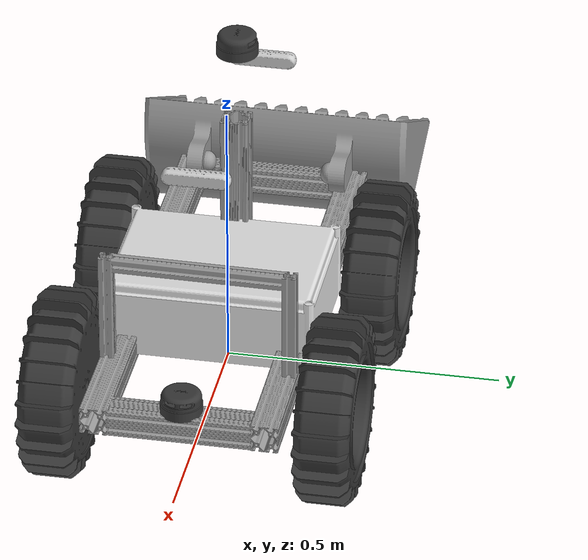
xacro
<?xml version="1.0"?>
<robot name="real_bot"
  xmlns:xacro="http://www.ros.org/wiki/xacro">

  <material name="light_grey">
    <color rgba="0.61 0.61 0.61 1.0" />
  </material>

  <material name="camera_grey">
    <color rgba="0.81 0.81 0.81 1.0" />
  </material>

  <material name="black">
    <color rgba="0.22 0.22 0.22 1.0" />
  </material>

  <material name="white">
    <color rgba="0.89 0.89 0.89 1.0" />
  </material>

  <link name="base_link">
    <visual>
      <geometry>
        <mesh filename="file:///$(find lunabot_simulation)/meshes/base_link.stl" />
      </geometry>
      <origin xyz="0 0 0.1625" rpy="0 0 0" />
      <material name="light_grey" />
    </visual>
    <collision>
      <geometry>
        <mesh filename="file:///$(find lunabot_simulation)/meshes/base_link.stl" />
      </geometry>
      <origin xyz="0 0 0.085" rpy="0 0 0" />
    </collision>
    <inertial>
      <mass value="25.0" />
      <origin xyz="0 0 0.085" />
      <inertia ixx="1.3669" ixy="0.0" ixz="0.0" iyy="3.3602" iyz="0.0" izz="4.7271" />
    </inertial>
  </link>

  <link name="ebox_link">
    <visual>
      <geometry>
        <mesh filename="file:///$(find lunabot_simulation)/meshes/ebox_link.stl" />
      </geometry>
      <origin xyz="0 0 0" rpy="0 0 0" />
      <material name="white" />
    </visual>
    <collision>
      <geometry>
        <mesh filename="file:///$(find lunabot_simulation)/meshes/ebox_link.stl" />
      </geometry>
      <origin xyz="0 0 0" rpy="0 0 0" />
    </collision>
  </link>

  <link name="lidar1_link">
    <visual>
      <geometry>
        <mesh filename="file:///$(find lunabot_simulation)/meshes/lidar1_link.stl" />
      </geometry>
      <origin xyz="0 0 0" rpy="0 0 -1.5708" />
      <material name="black" />
    </visual>
    <collision>
      <geometry>
        <mesh filename="file:///$(find lunabot_simulation)/meshes/lidar1_link.stl" />
      </geometry>
      <origin xyz="0 0 0" rpy="0 0 -1.5708" />
    </collision>
  </link>

  <link name="blade_link">
    <visual>
      <geometry>
        <mesh filename="file:///$(find lunabot_simulation)/meshes/blade_link.stl" />
      </geometry>
      <origin xyz="0 0 0" rpy="0 0 0" />
      <material name="light_grey" />
    </visual>
    <collision>
      <geometry>
        <mesh filename="file:///$(find lunabot_simulation)/meshes/blade_link.stl" />
      </geometry>
      <origin xyz="0 0 0" rpy="0 0 0" />
    </collision>
    <inertial>
      <mass value="5.0" />
      <origin xyz="0 0 0" />
      <inertia ixx="0.0833" ixy="0.0" ixz="0.0" iyy="0.1667" iyz="0.0" izz="0.2333" />
    </inertial>
  </link>

  <link name="lidar2_link">
    <visual>
      <geometry>
        <mesh filename="file:///$(find lunabot_simulation)/meshes/lidar2_link.stl" />
      </geometry>
      <origin xyz="0 0 0" rpy="0 0 -3.14" />
      <material name="black" />
    </visual>
    <collision>
      <geometry>
        <mesh filename="file:///$(find lunabot_simulation)/meshes/lidar2_link.stl" />
      </geometry>
      <origin xyz="0 0 0" rpy="0 0 -3.14" />
    </collision>
  </link>

  <link name="d455_link">
    <visual>
      <geometry>
        <mesh filename="file:///$(find lunabot_simulation)/meshes/camera_link.stl" />
      </geometry>
      <origin xyz="0 0 0" rpy="0 0 3.14" />
      <material name="camera_grey" />
    </visual>
    <collision>
      <geometry>
        <mesh filename="file:///$(find lunabot_simulation)/meshes/camera_link.stl" />
      </geometry>
      <origin xyz="0 0 0" rpy="0 0 3.14" />
    </collision>
  </link>

  <link name="d456_link">
    <visual>
      <geometry>
        <mesh filename="file:///$(find lunabot_simulation)/meshes/camera_link.stl" />
      </geometry>
      <origin xyz="0 0 0" rpy="0 0 0" />
      <material name="camera_grey" />
    </visual>
    <collision>
      <geometry>
        <mesh filename="file:///$(find lunabot_simulation)/meshes/camera_link.stl" />
      </geometry>
      <origin xyz="0 0 0" rpy="0 0 0" />
    </collision>
  </link>

  <link name="front_right_wheel_link">
    <visual>
      <geometry>
        <mesh filename="file:///$(find lunabot_simulation)/meshes/wheel_link.stl" />
      </geometry>
      <origin xyz="0 0 0" rpy="1.5708 0 0" />
      <material name="black" />
    </visual>
    <inertial>
      <mass value="2.27" />
      <origin xyz="0 0 0" />
      <inertia ixx="0.0255" ixy="0.0" ixz="0.0" iyy="0.0255" iyz="0.0" izz="0.0510" />
    </inertial>
    <collision>
      <geometry>
        <mesh filename="file:///$(find lunabot_simulation)/meshes/wheel_link.stl" />
      </geometry>
      <origin xyz="0 0 0" rpy="1.5708 0 0" />
    </collision>
  </link>

  <link name="front_left_wheel_link">
    <visual>
      <geometry>
        <mesh filename="file:///$(find lunabot_simulation)/meshes/wheel_link.stl" />
      </geometry>
      <origin xyz="0 0 0" rpy="-1.5708 0 0" />
      <material name="black" />
    </visual>
    <inertial>
      <mass value="2.27" />
      <origin xyz="0 0 0" />
      <inertia ixx="0.0255" ixy="0.0" ixz="0.0" iyy="0.0255" iyz="0.0" izz="0.0510" />
    </inertial>
    <collision>
      <geometry>
        <mesh filename="file:///$(find lunabot_simulation)/meshes/wheel_link.stl" />
      </geometry>
      <origin xyz="0 0 0" rpy="-1.5708 0 0" />
    </collision>
  </link>

  <link name="rear_right_wheel_link">
    <visual>
      <geometry>
        <mesh filename="file:///$(find lunabot_simulation)/meshes/wheel_link.stl" />
      </geometry>
      <origin xyz="0 0 0" rpy="1.5708 0 0" />
      <material name="black" />
    </visual>
    <inertial>
      <mass value="2.27" />
      <origin xyz="0 0 0" />
      <inertia ixx="0.0255" ixy="0.0" ixz="0.0" iyy="0.0255" iyz="0.0" izz="0.0510" />
    </inertial>
    <collision>
      <geometry>
        <mesh filename="file:///$(find lunabot_simulation)/meshes/wheel_link.stl" />
      </geometry>
      <origin xyz="0 0 0" rpy="1.5708 0 0" />
    </collision>
  </link>

  <link name="rear_left_wheel_link">
    <visual>
      <geometry>
        <mesh filename="file:///$(find lunabot_simulation)/meshes/wheel_link.stl" />
      </geometry>
      <origin xyz="0 0 0" rpy="-1.5708 0 0" />
      <material name="black" />
    </visual>
    <inertial>
      <mass value="2.27" />
      <origin xyz="0 0 0" />
      <inertia ixx="0.0255" ixy="0.0" ixz="0.0" iyy="0.0255" iyz="0.0" izz="0.0510" />
    </inertial>
    <collision>
      <geometry>
        <mesh filename="file:///$(find lunabot_simulation)/meshes/wheel_link.stl" />
      </geometry>
      <origin xyz="0 0 0" rpy="-1.5708 0 0" />
    </collision>
  </link>

  <joint name="base_rear_right_wheel_joint" type="continuous">
    <parent link="base_link" />
    <child link="rear_right_wheel_link" />
    <origin xyz="-0.19 -0.25 0.085" rpy="0 0 0" />
    <axis xyz="0 1 0" />
  </joint>

  <joint name="base_rear_left_wheel_joint" type="continuous">
    <parent link="base_link" />
    <child link="rear_left_wheel_link" />
    <origin xyz="-0.19 0.25 0.085" rpy="0 0 0" />
    <axis xyz="0 1 0" />
  </joint>

  <joint name="base_front_right_wheel_joint" type="continuous">
    <parent link="base_link" />
    <child link="front_right_wheel_link" />
    <origin xyz="0.28 -0.25 0.085" rpy="0 0 0" />
    <axis xyz="0 1 0" />
  </joint>

  <joint name="base_front_left_wheel_joint" type="continuous">
    <parent link="base_link" />
    <child link="front_left_wheel_link" />
    <origin xyz="0.28 0.25 0.085" rpy="0 0 0" />
    <axis xyz="0 1 0" />
  </joint>

  <joint name="base_lidar1_joint" type="fixed">
    <parent link="base_link" />
    <child link="lidar1_link" />
    <origin xyz="-0.0925 0 0.6075" rpy="0 0 0" />
  </joint>

  <joint name="base_lidar2_joint" type="fixed">
    <parent link="base_link" />
    <child link="lidar2_link" />
    <origin xyz="0.425 0 0.1708" rpy="0 0 0" />
  </joint>

  <joint name="base_ebox_joint" type="fixed">
    <parent link="base_link" />
    <child link="ebox_link" />
    <origin xyz="0.06 0 0.22" rpy="0 0 0" />
  </joint>

  <joint name="base_blade_joint" type="revolute">
    <parent link="base_link" />
    <child link="blade_link" />
    <origin xyz="-0.55 0.0 0.14" rpy="0 -0.4 3.14" />
    <axis xyz="0 1 0" />
    <limit effort="100" velocity="1.0" lower="-0.75" upper="0.75" />
    <dynamics damping="0.0" friction="0.0" />
  </joint>

  <joint name="base_d455_joint" type="fixed">
    <parent link="base_link" />
    <child link="d455_link" />
    <origin xyz="-0.305 0 0.45" rpy="0 0 3.14" />
  </joint>

  <joint name="base_d456_joint" type="fixed">
    <parent link="base_link" />
    <child link="d456_link" />
    <origin xyz="0.305 0 0.55" rpy="0 0 0" />
  </joint>

</robot>
